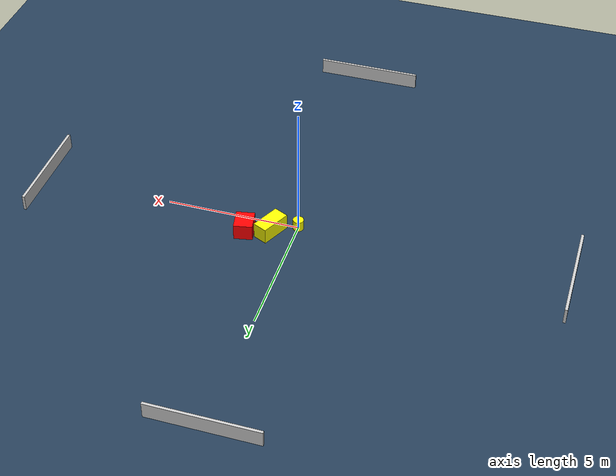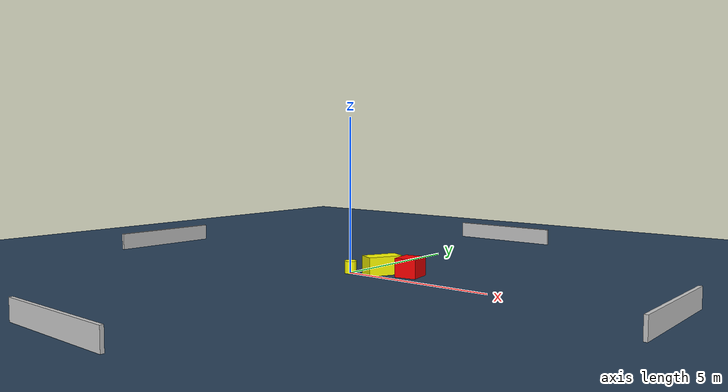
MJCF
<?xml version="1.0" ?>
<mujoco model="generated_environment">
  <option timestep="0.01" integrator="RK4" cone="elliptic"/>
  <default>
    <geom density="1"/>
  </default>
  <asset>
    <texture builtin="gradient" height="3072" name="skybox" rgb1="0.3 0.5 0.7" rgb2="0 0 0" type="skybox" width="512"/>
    <texture builtin="checker" height="300" name="groundplane" rgb1="0.2 0.3 0.4" rgb2="0.1 0.2 0.3" type="2d" width="300"/>
    <material name="groundplane" reflectance="0.2" texrepeat="5 5" texture="groundplane"/>
  </asset>
  <worldbody>
    <light dir="0 0 -1" directional="true" pos="0 0 1.5"/>
    <geom condim="3" friction="0.5 0.005 0.001" material="groundplane" name="floor" pos="0 0 0" size="0 0 0.05" type="plane"/>
    <body name="walls">
      <geom name="wall_1" condim="4" pos="-10.0 0.0 0.3" rgba="0.800000011920929 0.800000011920929 0.800000011920929 1.0" size="0.05 2.0 0.3" type="box"/>
      <geom name="wall_2" condim="4" pos="10.0 0.0 0.3" rgba="0.800000011920929 0.800000011920929 0.800000011920929 1.0" size="0.05 2.0 0.3" type="box"/>
      <geom name="wall_3" condim="4" pos="0.0 -10.0 0.3" rgba="0.800000011920929 0.800000011920929 0.800000011920929 1.0" size="2.0 0.05 0.3" type="box"/>
      <geom name="wall_4" condim="4" pos="0.0 10.0 0.3" rgba="0.800000011920929 0.800000011920929 0.800000011920929 1.0" size="2.0 0.05 0.3" type="box"/>
    </body>
    <body name="robot">
      <joint name="joint_x" type="slide" pos="0 0 0" axis="1 0 0"/>
      <joint name="joint_y" type="slide" pos="0 0 0" axis="0 1 0"/>
      <geom name="robot" type="cylinder" pos="0.0 0.0 0.2" size="0.2 0.2 0.0" mass="5.0" friction="1.0 0.005 0.0001" condim="4" rgba="1.0 1.0 0.0 1.0"/>
    </body>
    <body name="obstacle_1_movable">
      <geom name="obstacle_1_movable" condim="4" pos="0.895019884016932 0.512183232366987 0.3" euler="0 0 244.90829269025954" friction="0.0 0.005 0.001" rgba="1.0 1.0 0.0 1.0" size="0.5770355782168768 0.2828935170793917 0.3" type="box" mass="0.1"/>
      <joint type="free"/>
    </body>
    <body name="obstacle_2_static">
      <geom name="obstacle_2_static" condim="4" pos="1.8029985814999627 0.7869793771131522 0.3" euler="0 0 10.791071535238803" friction="0.0 0.005 0.001" rgba="1.0 0.0 0.0 1.0" size="0.3459693100598408 0.4019145244899405 0.3" type="box"/>
    </body>
  </worldbody>
  <actuator>
    <motor name="actuator_x" joint="joint_x" gear="1" ctrlrange="-1 1"/>
    <motor name="actuator_y" joint="joint_y" gear="1" ctrlrange="-1 1"/>
  </actuator>
</mujoco>
